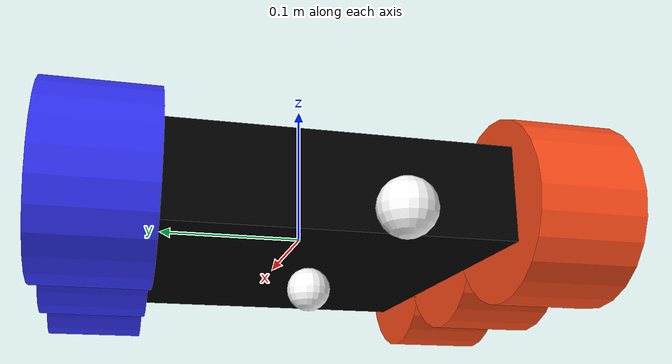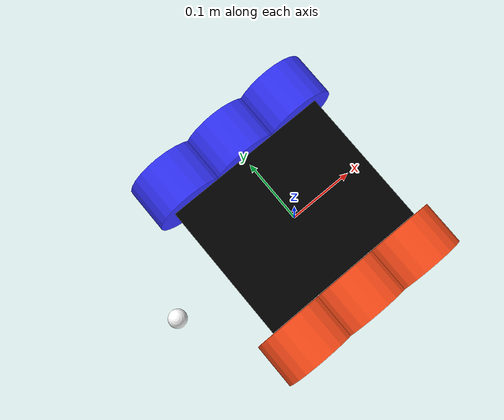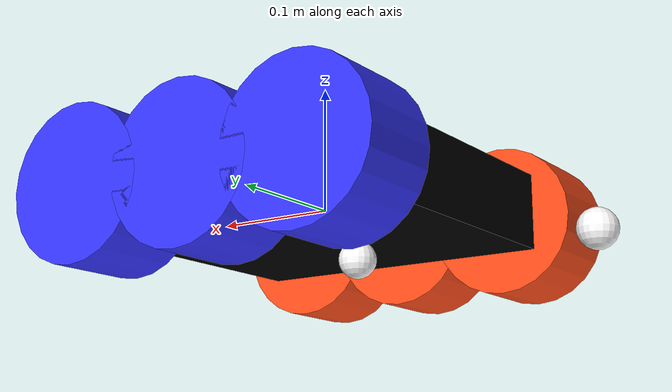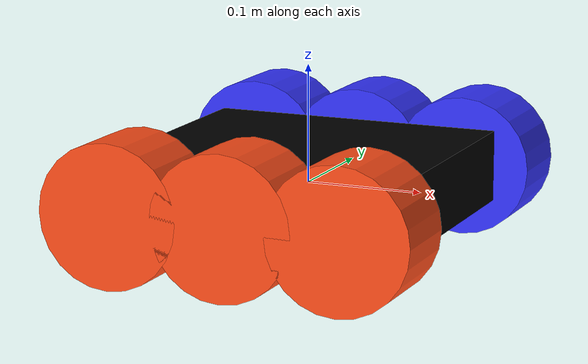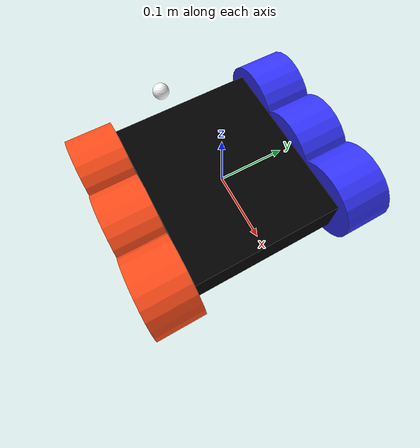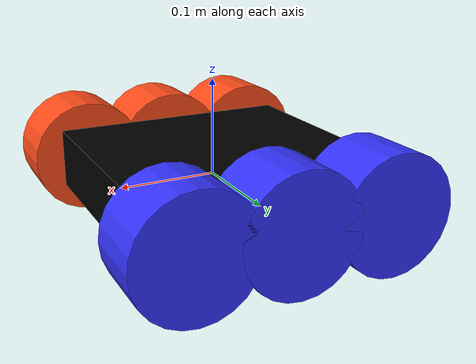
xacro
<?xml version="1.0"?>
<robot xmlns:xacro="http://www.ros.org/wiki/xacro">

    <xacro:include filename ="inertial_macros.xacro"/>

    <material name= "white">
        <color rgba="1 1 1 1" />
    </material>

    <material name= "orange">
        <color rgba="1 0.3 0.1 1" />
    </material>

    <material name= "blue">
        <color rgba="0.2 0.2 1 1" />
    </material>

    <material name= "black">
        <color rgba="0 0 0 1" />
    </material>

    <link name = "base_link">

    </link>

    <!-- BASE_FOOTPRINT LINK -->

    <joint name="base_footprint_joint" type="fixed">
        <parent link="base_link"/>
        <child link="base_footprint"/>
        <origin xyz="0 0 0" rpy="0 0 0"/>
    </joint>

    <link name="base_footprint">
    </link>

    <joint name = "chassis_joint" type = "fixed">
        <parent link = "base_link"/>
        <child link = "chassis"/>
        <origin xyz = "-0.1275 0 0"/>
    </joint>

    <link name = "chassis">
        <visual>
            <origin xyz="0.1275 0 0.00305"/>
                <geometry>
                    <box size = "0.255 0.214 0.061"/>
                </geometry>
            <material name = "black" />
        </visual>
        <collision>
            <origin xyz="0.1275 0 0.00305"/>
                <geometry>
                    <box size = "0.255 0.214 0.061"/>
                </geometry>
            <material name = "black" />
        </collision>
        <xacro:inertial_box mass="0.5" x= "0.255" y= "0.214" z= "0.061">
            <origin xyz ="0.1275 0 0.00315" rpy="0 0 0"/>
        </xacro:inertial_box>
    </link>

    <gazebo reference = "chassis">
        <material>Gazebo/Black</material>
    </gazebo>

    <!-- LEFT WHEEL REAR -->

    <joint name = "back_left_wheel_joint" type = "fixed">
        <parent link = "base_link"/>
        <child link = "left_wheel_rear"/>
        <origin xyz = "-0.0975 0.1425 0" rpy="-${pi/2} 0 0"/>
        <axis xyz = "0 0 1"/>
    </joint>

    <link name = "left_wheel_rear">
        <visual>
            <geometry>
                <cylinder radius = "0.06" length ="0.069"/>
            </geometry>
            <material name = "blue" />
        </visual>
    </link>

    <gazebo reference = "left_wheel_rear">
        <material>Gazebo/Blue</material>
        <mu1 value="0.001"/>
        <mu2 value="0.001"/>
    </gazebo>

    <!-- LEFT WHEEL FRONT-->

    <joint name = "front_left_wheel_joint" type = "fixed">
        <parent link = "base_link"/>
        <child link = "left_wheel_front"/>
        <origin xyz = "0.0975 0.1425 0" rpy="-${pi/2} 0 0"/>
        <axis xyz = "0 0 1"/>
    </joint>

    <link name = "left_wheel_front">
        <visual>
            <geometry>
                <cylinder radius = "0.06" length ="0.069"/>
            </geometry>
            <material name = "blue" />
        </visual>
    </link>

    <gazebo reference = "left_wheel_front">
        <material>Gazebo/Blue</material>
        <mu1 value="0.001"/>
        <mu2 value="0.001"/>
    </gazebo>

    <!-- LEFT DRIVE WHEEL -->

      <joint name = "left_drive_joint" type = "continuous">
        <parent link = "base_link"/>
        <child link = "left_wheel_drive"/>
        <origin xyz = "0 0.1425 0" rpy="-${pi/2} 0 0"/>
        <axis xyz = "0 0 1"/>
    </joint>

    <link name = "left_wheel_drive">
        <visual>
            <geometry>
                <cylinder radius = "0.06" length ="0.069"/>
            </geometry>
            <material name = "blue" />
        </visual>
        <collision>
            <geometry>
                <cylinder radius = "0.06" length ="0.069"/>
            </geometry>
            <material name = "blue" />
        </collision>
        <xacro:inertial_cylinder mass = "0.1" length = "0.069" radius = "0.06">
            <origin xyz = "0 0 0" rpy ="0 0 0"/>
        </xacro:inertial_cylinder>
    </link>

    <gazebo reference = "left_wheel_drive">
        <material>Gazebo/GreyTransparent</material>
    </gazebo>

     <!-- RIGHTWHEEL REAR -->

    <joint name = "back_right_wheel_joint" type = "fixed">
        <parent link = "base_link"/>
        <child link = "right_wheel_rear"/>
        <origin xyz = "-0.0975 -0.1425 0" rpy="${pi/2} 0 0"/>
        <axis xyz = "0 0 -1"/>
    </joint>

    <link name = "right_wheel_rear">
        <visual>
            <geometry>
                <cylinder radius = "0.06" length ="0.069"/>
            </geometry>
            <material name = "orange" />
        </visual>
    </link>

    <gazebo reference = "right_wheel_rear">
        <material>Gazebo/Orange</material>
        <mu1 value="0.001"/>
        <mu2 value="0.001"/>
    </gazebo>

     <!-- RIGHTWHEEL FRONT-->

    <joint name = "front_right_wheel_joint" type = "fixed">
        <parent link = "base_link"/>
        <child link = "right_wheel_front"/>
        <origin xyz = "0.0975 -0.1425 0" rpy="${pi/2} 0 0"/>
        <axis xyz = "0 0 -1"/>
    </joint>

    <link name = "right_wheel_front">
        <visual>
            <geometry>
                <cylinder radius = "0.06" length ="0.069"/>
            </geometry>
            <material name = "orange" />
        </visual>
    </link>

    <gazebo reference = "right_wheel_front">
        <material>Gazebo/Orange</material>
        <mu1 value="0.001"/>
        <mu2 value="0.001"/>
    </gazebo>

    <!-- RIGHT WHEEL DRIVE -->
     <joint name = "right_drive_joint" type = "continuous">
        <parent link = "base_link"/>
        <child link = "right_wheel_drive"/>
        <origin xyz = "0 -0.1425 0" rpy="${pi/2} 0 0"/>
        <axis xyz = "0 0 -1"/>
    </joint>

    <link name = "right_wheel_drive">
        <visual>
            <geometry>
                <cylinder radius = "0.06" length ="0.069"/>
            </geometry>
            <material name = "orange" />
        </visual>
        <collision>
            <geometry>
                <cylinder radius = "0.06" length ="0.069"/>
            </geometry>
            <material name = "orange" />
        </collision>
        <xacro:inertial_cylinder mass = "0.1" length = "0.069" radius = "0.06">
            <origin xyz = "0 0 0" rpy ="0 0 0"/>
        </xacro:inertial_cylinder>
    </link>

    <gazebo reference = "right_wheel_drive">
        <material>Gazebo/GreyTransparent</material>
    </gazebo>

    <!--FRONT BALANCE-->

    <joint name="front_caster_wheel_joint" type="fixed">
        <parent link="chassis"/>
        <child link="caster_wheel_front"/>
        <origin xyz="0.0975 0 -0.0425"/>
    </joint>

    <link name="caster_wheel_front">
        <visual>
            <geometry>
                <sphere radius="0.01475"/>
            </geometry>
            <material name="white"/>
        </visual>
        <collision>
            <geometry>
                <sphere radius="0.01475"/>
            </geometry>
        </collision>
        <xacro:inertial_sphere mass="0.1" radius="0.01475">
            <origin xyz="0 0 0" rpy="0 0 0"/>
        </xacro:inertial_sphere>
    </link>

    <gazebo reference = "caster_wheel_front">
        <material>Gazebo/GreyTransparent</material>
        <mu1 value="0.001"/>
        <mu2 value="0.001"/>
    </gazebo>

    <!-- BACK BALANCE -->

     <joint name="back_caster_wheel_joint" type="fixed">
        <parent link="chassis"/>
        <child link="caster_wheel_back"/>
        <origin xyz="-0.0975 0 -0.0425"/>
    </joint>

    <link name="caster_wheel_back">
        <visual>
            <geometry>
                <sphere radius="0.01475"/>
            </geometry>
            <material name="white"/>
        </visual>
        <collision>
            <geometry>
                <sphere radius="0.01475"/>
            </geometry>
        </collision>
        <xacro:inertial_sphere mass="0.1" radius="0.01475">
            <origin xyz="0 0 0" rpy="0 0 0"/>
        </xacro:inertial_sphere>
    </link>

    <gazebo reference = "caster_wheel_back">
        <material>Gazebo/GreyTransparent</material>
        <mu1 value="0.001"/>
        <mu2 value="0.001"/>
    </gazebo>

</robot>
